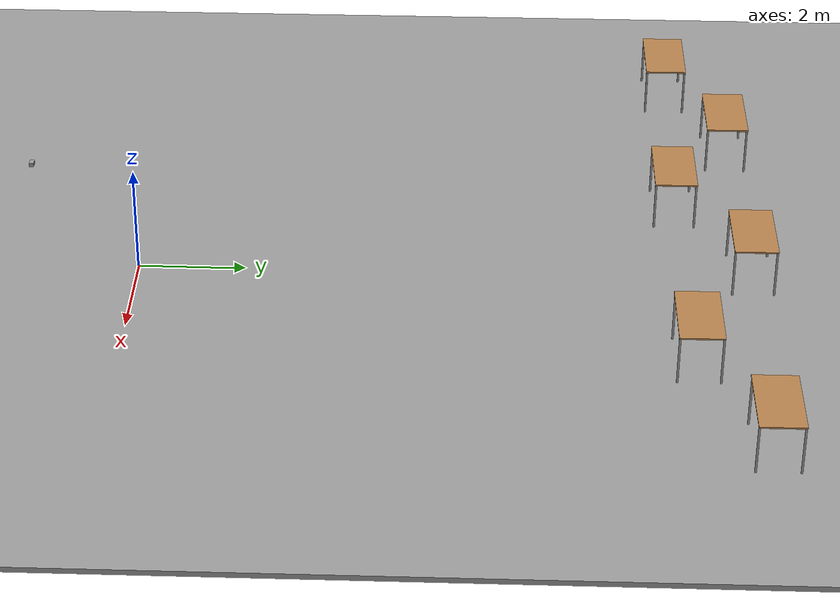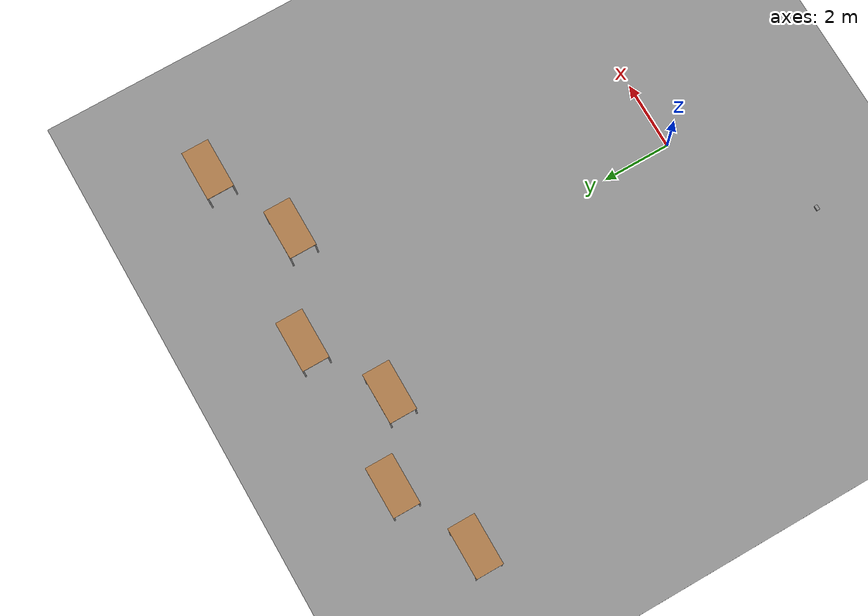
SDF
<sdf version="1.7">
 <world name="default">
  <light name="sun" type="directional">
   <pose>0 0 10 0 -0 0</pose>
   <diffuse>0.8 0.8 0.8 1</diffuse>
   <specular>0.2 0.2 0.2 1</specular>
   <attenuation>
    <range>1000</range>
    <constant>0.9</constant>
    <linear>0.01</linear>
    <quadratic>0.001</quadratic>
   </attenuation>
   <direction>-0.5 0.1 -0.9</direction>
   <spot><inner_angle>0</inner_angle><outer_angle>0</outer_angle><falloff>0</falloff></spot>
  </light>
  <model name="ground_plane">
   <static>1</static>
   <link name="link">
    <collision name="collision">
     <geometry><plane><normal>0 0 1</normal><size>100 100</size></plane></geometry>
     <surface><friction><ode><mu>100</mu><mu2>50</mu2></ode></friction></surface>
    </collision>
    <visual name="visual">
     <cast_shadows>0</cast_shadows>
     <geometry><plane><normal>0 0 1</normal><size>100 100</size></plane></geometry>
     <material>
      <script><uri>file://media/materials/scripts/gazebo.material</uri><name>Gazebo/Grey</name></script>
     </material>
    </visual>
   </link>
  </model>
  <gravity>0 0 -9.8</gravity>
  <magnetic_field>6e-06 2.3e-05 -4.2e-05</magnetic_field>
  <atmosphere type="adiabatic"/>
  <physics type="ode">
   <max_step_size>0.001</max_step_size>
   <real_time_factor>1</real_time_factor>
   <real_time_update_rate>1000</real_time_update_rate>
  </physics>
  <scene><ambient>0.4 0.4 0.4 1</ambient><background>0.7 0.7 0.7 1</background><shadows>1</shadows></scene>
  <spherical_coordinates>
   <surface_model>EARTH_WGS84</surface_model>
   <latitude_deg>0</latitude_deg>
   <longitude_deg>0</longitude_deg>
   <elevation>0</elevation>
   <heading_deg>0</heading_deg>
  </spherical_coordinates>
  <model name="unit_box">
   <pose>-3.60607 -2.58009 0.065248 2e-06 3e-06 -9e-06</pose>
   <link name="link">
    <inertial>
     <mass>1</mass>
     <inertia>
      <ixx>0.166667</ixx>
      <ixy>0</ixy>
      <ixz>0</ixz>
      <iyy>0.166667</iyy>
      <iyz>0</iyz>
      <izz>0.166667</izz>
     </inertia>
    </inertial>
    <collision name="collision">
     <geometry><box><size>0.146938 0.090735 0.130512</size></box></geometry>
    </collision>
    <visual name="visual">
     <geometry><box><size>0.146938 0.090735 0.130512</size></box></geometry>
     <material>
      <script><name>Gazebo/Grey</name><uri>file://media/materials/scripts/gazebo.material</uri></script>
     </material>
    </visual>
   </link>
  </model>
  <model name="ground_plane_0">
   <static>1</static>
   <link name="link">
    <collision name="collision">
     <geometry><plane><normal>0 0 1</normal><size>100 100</size></plane></geometry>
     <surface>
      <contact><collide_bitmask>65535</collide_bitmask></contact>
      <friction><ode><mu>100</mu><mu2>50</mu2></ode></friction>
     </surface>
    </collision>
    <visual name="visual">
     <cast_shadows>0</cast_shadows>
     <geometry><plane><normal>0 0 1</normal><size>100 100</size></plane></geometry>
     <material>
      <script><uri>file://media/materials/scripts/gazebo.material</uri><name>Gazebo/Grey</name></script>
     </material>
    </visual>
   </link>
   <pose>4.21723 -0.409955 0 0 -0 0</pose>
  </model>
  <model name="table">
   <static>1</static>
   <link name="link">
    <collision name="surface">
     <pose>0 0 1 0 -0 0</pose>
     <geometry><box><size>1.5 0.8 0.03</size></box></geometry>
     <surface><friction><ode><mu>0.6</mu><mu2>0.6</mu2></ode></friction></surface>
    </collision>
    <visual name="visual1">
     <pose>0 0 1 0 -0 0</pose>
     <geometry><box><size>1.5 0.8 0.03</size></box></geometry>
     <material>
      <script><uri>file://media/materials/scripts/gazebo.material</uri><name>Gazebo/Wood</name></script>
     </material>
    </visual>
    <collision name="front_left_leg">
     <pose>0.68 0.38 0.5 0 -0 0</pose>
     <geometry><cylinder><radius>0.02</radius><length>1</length></cylinder></geometry>
    </collision>
    <visual name="front_left_leg">
     <pose>0.68 0.38 0.5 0 -0 0</pose>
     <geometry><cylinder><radius>0.02</radius><length>1</length></cylinder></geometry>
     <material>
      <script><uri>file://media/materials/scripts/gazebo.material</uri><name>Gazebo/Grey</name></script>
     </material>
    </visual>
    <collision name="front_right_leg">
     <pose>0.68 -0.38 0.5 0 -0 0</pose>
     <geometry><cylinder><radius>0.02</radius><length>1</length></cylinder></geometry>
    </collision>
    <visual name="front_right_leg">
     <pose>0.68 -0.38 0.5 0 -0 0</pose>
     <geometry><cylinder><radius>0.02</radius><length>1</length></cylinder></geometry>
     <material>
      <script><uri>file://media/materials/scripts/gazebo.material</uri><name>Gazebo/Grey</name></script>
     </material>
    </visual>
    <collision name="back_right_leg">
     <pose>-0.68 -0.38 0.5 0 -0 0</pose>
     <geometry><cylinder><radius>0.02</radius><length>1</length></cylinder></geometry>
    </collision>
    <visual name="back_right_leg">
     <pose>-0.68 -0.38 0.5 0 -0 0</pose>
     <geometry><cylinder><radius>0.02</radius><length>1</length></cylinder></geometry>
     <material>
      <script><uri>file://media/materials/scripts/gazebo.material</uri><name>Gazebo/Grey</name></script>
     </material>
    </visual>
    <collision name="back_left_leg">
     <pose>-0.68 0.38 0.5 0 -0 0</pose>
     <geometry><cylinder><radius>0.02</radius><length>1</length></cylinder></geometry>
    </collision>
    <visual name="back_left_leg">
     <pose>-0.68 0.38 0.5 0 -0 0</pose>
     <geometry><cylinder><radius>0.02</radius><length>1</length></cylinder></geometry>
     <material>
      <script><uri>file://media/materials/scripts/gazebo.material</uri><name>Gazebo/Grey</name></script>
     </material>
    </visual>
   </link>
   <pose>5.38931 11.3077 0 0 -0 0</pose>
  </model>
  <model name="table_clone">
   <static>1</static>
   <link name="link">
    <collision name="surface">
     <pose>0 0 1 0 -0 0</pose>
     <geometry><box><size>1.5 0.8 0.03</size></box></geometry>
     <surface><friction><ode><mu>0.6</mu><mu2>0.6</mu2></ode></friction></surface>
    </collision>
    <visual name="visual1">
     <pose>0 0 1 0 -0 0</pose>
     <geometry><box><size>1.5 0.8 0.03</size></box></geometry>
     <material>
      <script><uri>file://media/materials/scripts/gazebo.material</uri><name>Gazebo/Wood</name></script>
     </material>
    </visual>
    <collision name="front_left_leg">
     <pose>0.68 0.38 0.5 0 -0 0</pose>
     <geometry><cylinder><radius>0.02</radius><length>1</length></cylinder></geometry>
    </collision>
    <visual name="front_left_leg">
     <pose>0.68 0.38 0.5 0 -0 0</pose>
     <geometry><cylinder><radius>0.02</radius><length>1</length></cylinder></geometry>
     <material>
      <script><uri>file://media/materials/scripts/gazebo.material</uri><name>Gazebo/Grey</name></script>
     </material>
    </visual>
    <collision name="front_right_leg">
     <pose>0.68 -0.38 0.5 0 -0 0</pose>
     <geometry><cylinder><radius>0.02</radius><length>1</length></cylinder></geometry>
    </collision>
    <visual name="front_right_leg">
     <pose>0.68 -0.38 0.5 0 -0 0</pose>
     <geometry><cylinder><radius>0.02</radius><length>1</length></cylinder></geometry>
     <material>
      <script><uri>file://media/materials/scripts/gazebo.material</uri><name>Gazebo/Grey</name></script>
     </material>
    </visual>
    <collision name="back_right_leg">
     <pose>-0.68 -0.38 0.5 0 -0 0</pose>
     <geometry><cylinder><radius>0.02</radius><length>1</length></cylinder></geometry>
    </collision>
    <visual name="back_right_leg">
     <pose>-0.68 -0.38 0.5 0 -0 0</pose>
     <geometry><cylinder><radius>0.02</radius><length>1</length></cylinder></geometry>
     <material>
      <script><uri>file://media/materials/scripts/gazebo.material</uri><name>Gazebo/Grey</name></script>
     </material>
    </visual>
    <collision name="back_left_leg">
     <pose>-0.68 0.38 0.5 0 -0 0</pose>
     <geometry><cylinder><radius>0.02</radius><length>1</length></cylinder></geometry>
    </collision>
    <visual name="back_left_leg">
     <pose>-0.68 0.38 0.5 0 -0 0</pose>
     <geometry><cylinder><radius>0.02</radius><length>1</length></cylinder></geometry>
     <material>
      <script><uri>file://media/materials/scripts/gazebo.material</uri><name>Gazebo/Grey</name></script>
     </material>
    </visual>
   </link>
   <pose>2.83678 10.1803 0 0 -0 0</pose>
  </model>
  <model name="table_clone_clone">
   <static>1</static>
   <link name="link">
    <collision name="surface">
     <pose>0 0 1 0 -0 0</pose>
     <geometry><box><size>1.5 0.8 0.03</size></box></geometry>
     <surface><friction><ode><mu>0.6</mu><mu2>0.6</mu2></ode></friction></surface>
    </collision>
    <visual name="visual1">
     <pose>0 0 1 0 -0 0</pose>
     <geometry><box><size>1.5 0.8 0.03</size></box></geometry>
     <material>
      <script><uri>file://media/materials/scripts/gazebo.material</uri><name>Gazebo/Wood</name></script>
     </material>
    </visual>
    <collision name="front_left_leg">
     <pose>0.68 0.38 0.5 0 -0 0</pose>
     <geometry><cylinder><radius>0.02</radius><length>1</length></cylinder></geometry>
    </collision>
    <visual name="front_left_leg">
     <pose>0.68 0.38 0.5 0 -0 0</pose>
     <geometry><cylinder><radius>0.02</radius><length>1</length></cylinder></geometry>
     <material>
      <script><uri>file://media/materials/scripts/gazebo.material</uri><name>Gazebo/Grey</name></script>
     </material>
    </visual>
    <collision name="front_right_leg">
     <pose>0.68 -0.38 0.5 0 -0 0</pose>
     <geometry><cylinder><radius>0.02</radius><length>1</length></cylinder></geometry>
    </collision>
    <visual name="front_right_leg">
     <pose>0.68 -0.38 0.5 0 -0 0</pose>
     <geometry><cylinder><radius>0.02</radius><length>1</length></cylinder></geometry>
     <material>
      <script><uri>file://media/materials/scripts/gazebo.material</uri><name>Gazebo/Grey</name></script>
     </material>
    </visual>
    <collision name="back_right_leg">
     <pose>-0.68 -0.38 0.5 0 -0 0</pose>
     <geometry><cylinder><radius>0.02</radius><length>1</length></cylinder></geometry>
    </collision>
    <visual name="back_right_leg">
     <pose>-0.68 -0.38 0.5 0 -0 0</pose>
     <geometry><cylinder><radius>0.02</radius><length>1</length></cylinder></geometry>
     <material>
      <script><uri>file://media/materials/scripts/gazebo.material</uri><name>Gazebo/Grey</name></script>
     </material>
    </visual>
    <collision name="back_left_leg">
     <pose>-0.68 0.38 0.5 0 -0 0</pose>
     <geometry><cylinder><radius>0.02</radius><length>1</length></cylinder></geometry>
    </collision>
    <visual name="back_left_leg">
     <pose>-0.68 0.38 0.5 0 -0 0</pose>
     <geometry><cylinder><radius>0.02</radius><length>1</length></cylinder></geometry>
     <material>
      <script><uri>file://media/materials/scripts/gazebo.material</uri><name>Gazebo/Grey</name></script>
     </material>
    </visual>
   </link>
   <pose>-0.018705 11.359 0 0 -0 0</pose>
  </model>
  <model name="table_clone_clone_clone">
   <static>1</static>
   <link name="link">
    <collision name="surface">
     <pose>0 0 1 0 -0 0</pose>
     <geometry><box><size>1.5 0.8 0.03</size></box></geometry>
     <surface><friction><ode><mu>0.6</mu><mu2>0.6</mu2></ode></friction></surface>
    </collision>
    <visual name="visual1">
     <pose>0 0 1 0 -0 0</pose>
     <geometry><box><size>1.5 0.8 0.03</size></box></geometry>
     <material>
      <script><uri>file://media/materials/scripts/gazebo.material</uri><name>Gazebo/Wood</name></script>
     </material>
    </visual>
    <collision name="front_left_leg">
     <pose>0.68 0.38 0.5 0 -0 0</pose>
     <geometry><cylinder><radius>0.02</radius><length>1</length></cylinder></geometry>
    </collision>
    <visual name="front_left_leg">
     <pose>0.68 0.38 0.5 0 -0 0</pose>
     <geometry><cylinder><radius>0.02</radius><length>1</length></cylinder></geometry>
     <material>
      <script><uri>file://media/materials/scripts/gazebo.material</uri><name>Gazebo/Grey</name></script>
     </material>
    </visual>
    <collision name="front_right_leg">
     <pose>0.68 -0.38 0.5 0 -0 0</pose>
     <geometry><cylinder><radius>0.02</radius><length>1</length></cylinder></geometry>
    </collision>
    <visual name="front_right_leg">
     <pose>0.68 -0.38 0.5 0 -0 0</pose>
     <geometry><cylinder><radius>0.02</radius><length>1</length></cylinder></geometry>
     <material>
      <script><uri>file://media/materials/scripts/gazebo.material</uri><name>Gazebo/Grey</name></script>
     </material>
    </visual>
    <collision name="back_right_leg">
     <pose>-0.68 -0.38 0.5 0 -0 0</pose>
     <geometry><cylinder><radius>0.02</radius><length>1</length></cylinder></geometry>
    </collision>
    <visual name="back_right_leg">
     <pose>-0.68 -0.38 0.5 0 -0 0</pose>
     <geometry><cylinder><radius>0.02</radius><length>1</length></cylinder></geometry>
     <material>
      <script><uri>file://media/materials/scripts/gazebo.material</uri><name>Gazebo/Grey</name></script>
     </material>
    </visual>
    <collision name="back_left_leg">
     <pose>-0.68 0.38 0.5 0 -0 0</pose>
     <geometry><cylinder><radius>0.02</radius><length>1</length></cylinder></geometry>
    </collision>
    <visual name="back_left_leg">
     <pose>-0.68 0.38 0.5 0 -0 0</pose>
     <geometry><cylinder><radius>0.02</radius><length>1</length></cylinder></geometry>
     <material>
      <script><uri>file://media/materials/scripts/gazebo.material</uri><name>Gazebo/Grey</name></script>
     </material>
    </visual>
   </link>
   <pose>-2.3739 10.0518 0 0 -0 0</pose>
  </model>
  <model name="table_clone_clone_clone_clone">
   <static>1</static>
   <link name="link">
    <collision name="surface">
     <pose>0 0 1 0 -0 0</pose>
     <geometry><box><size>1.5 0.8 0.03</size></box></geometry>
     <surface><friction><ode><mu>0.6</mu><mu2>0.6</mu2></ode></friction></surface>
    </collision>
    <visual name="visual1">
     <pose>0 0 1 0 -0 0</pose>
     <geometry><box><size>1.5 0.8 0.03</size></box></geometry>
     <material>
      <script><uri>file://media/materials/scripts/gazebo.material</uri><name>Gazebo/Wood</name></script>
     </material>
    </visual>
    <collision name="front_left_leg">
     <pose>0.68 0.38 0.5 0 -0 0</pose>
     <geometry><cylinder><radius>0.02</radius><length>1</length></cylinder></geometry>
    </collision>
    <visual name="front_left_leg">
     <pose>0.68 0.38 0.5 0 -0 0</pose>
     <geometry><cylinder><radius>0.02</radius><length>1</length></cylinder></geometry>
     <material>
      <script><uri>file://media/materials/scripts/gazebo.material</uri><name>Gazebo/Grey</name></script>
     </material>
    </visual>
    <collision name="front_right_leg">
     <pose>0.68 -0.38 0.5 0 -0 0</pose>
     <geometry><cylinder><radius>0.02</radius><length>1</length></cylinder></geometry>
    </collision>
    <visual name="front_right_leg">
     <pose>0.68 -0.38 0.5 0 -0 0</pose>
     <geometry><cylinder><radius>0.02</radius><length>1</length></cylinder></geometry>
     <material>
      <script><uri>file://media/materials/scripts/gazebo.material</uri><name>Gazebo/Grey</name></script>
     </material>
    </visual>
    <collision name="back_right_leg">
     <pose>-0.68 -0.38 0.5 0 -0 0</pose>
     <geometry><cylinder><radius>0.02</radius><length>1</length></cylinder></geometry>
    </collision>
    <visual name="back_right_leg">
     <pose>-0.68 -0.38 0.5 0 -0 0</pose>
     <geometry><cylinder><radius>0.02</radius><length>1</length></cylinder></geometry>
     <material>
      <script><uri>file://media/materials/scripts/gazebo.material</uri><name>Gazebo/Grey</name></script>
     </material>
    </visual>
    <collision name="back_left_leg">
     <pose>-0.68 0.38 0.5 0 -0 0</pose>
     <geometry><cylinder><radius>0.02</radius><length>1</length></cylinder></geometry>
    </collision>
    <visual name="back_left_leg">
     <pose>-0.68 0.38 0.5 0 -0 0</pose>
     <geometry><cylinder><radius>0.02</radius><length>1</length></cylinder></geometry>
     <material>
      <script><uri>file://media/materials/scripts/gazebo.material</uri><name>Gazebo/Grey</name></script>
     </material>
    </visual>
   </link>
   <pose>-4.5657 11.1851 0 0 -0 0</pose>
  </model>
  <model name="table_clone_clone_clone_clone_clone">
   <static>1</static>
   <link name="link">
    <collision name="surface">
     <pose>0 0 1 0 -0 0</pose>
     <geometry><box><size>1.5 0.8 0.03</size></box></geometry>
     <surface><friction><ode><mu>0.6</mu><mu2>0.6</mu2></ode></friction></surface>
    </collision>
    <visual name="visual1">
     <pose>0 0 1 0 -0 0</pose>
     <geometry><box><size>1.5 0.8 0.03</size></box></geometry>
     <material>
      <script><uri>file://media/materials/scripts/gazebo.material</uri><name>Gazebo/Wood</name></script>
     </material>
    </visual>
    <collision name="front_left_leg">
     <pose>0.68 0.38 0.5 0 -0 0</pose>
     <geometry><cylinder><radius>0.02</radius><length>1</length></cylinder></geometry>
    </collision>
    <visual name="front_left_leg">
     <pose>0.68 0.38 0.5 0 -0 0</pose>
     <geometry><cylinder><radius>0.02</radius><length>1</length></cylinder></geometry>
     <material>
      <script><uri>file://media/materials/scripts/gazebo.material</uri><name>Gazebo/Grey</name></script>
     </material>
    </visual>
    <collision name="front_right_leg">
     <pose>0.68 -0.38 0.5 0 -0 0</pose>
     <geometry><cylinder><radius>0.02</radius><length>1</length></cylinder></geometry>
    </collision>
    <visual name="front_right_leg">
     <pose>0.68 -0.38 0.5 0 -0 0</pose>
     <geometry><cylinder><radius>0.02</radius><length>1</length></cylinder></geometry>
     <material>
      <script><uri>file://media/materials/scripts/gazebo.material</uri><name>Gazebo/Grey</name></script>
     </material>
    </visual>
    <collision name="back_right_leg">
     <pose>-0.68 -0.38 0.5 0 -0 0</pose>
     <geometry><cylinder><radius>0.02</radius><length>1</length></cylinder></geometry>
    </collision>
    <visual name="back_right_leg">
     <pose>-0.68 -0.38 0.5 0 -0 0</pose>
     <geometry><cylinder><radius>0.02</radius><length>1</length></cylinder></geometry>
     <material>
      <script><uri>file://media/materials/scripts/gazebo.material</uri><name>Gazebo/Grey</name></script>
     </material>
    </visual>
    <collision name="back_left_leg">
     <pose>-0.68 0.38 0.5 0 -0 0</pose>
     <geometry><cylinder><radius>0.02</radius><length>1</length></cylinder></geometry>
    </collision>
    <visual name="back_left_leg">
     <pose>-0.68 0.38 0.5 0 -0 0</pose>
     <geometry><cylinder><radius>0.02</radius><length>1</length></cylinder></geometry>
     <material>
      <script><uri>file://media/materials/scripts/gazebo.material</uri><name>Gazebo/Grey</name></script>
     </material>
    </visual>
   </link>
   <pose>-6.98512 10.1162 0 0 -0 0</pose>
  </model>
 </world>
</sdf>
